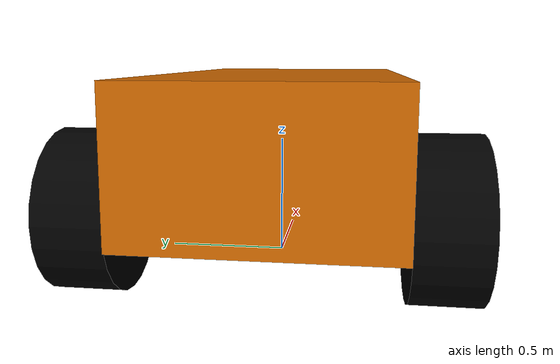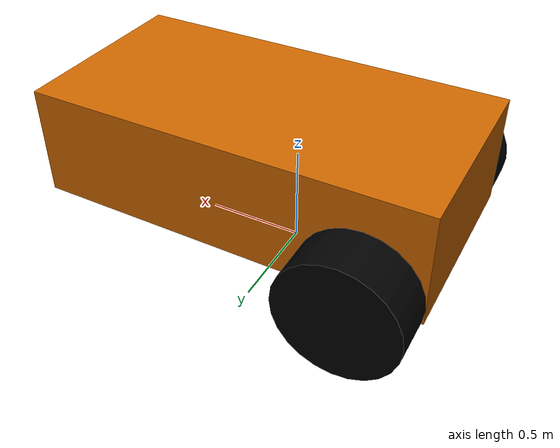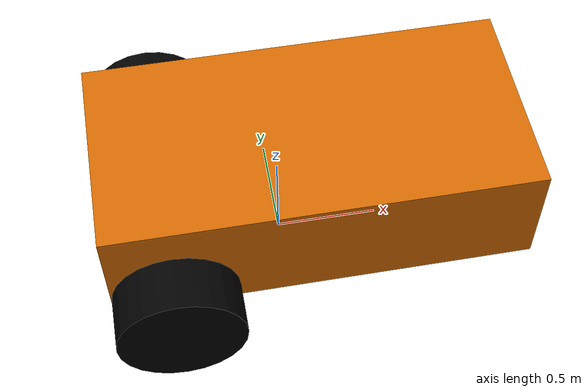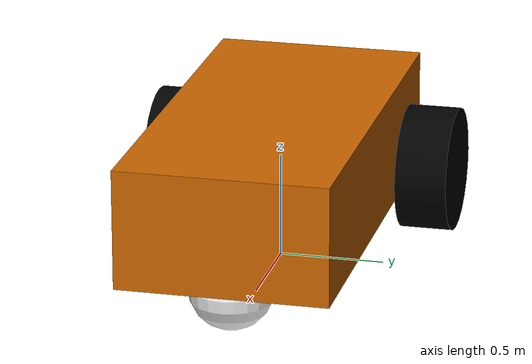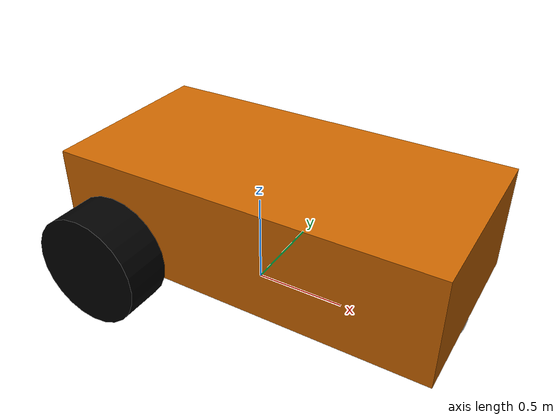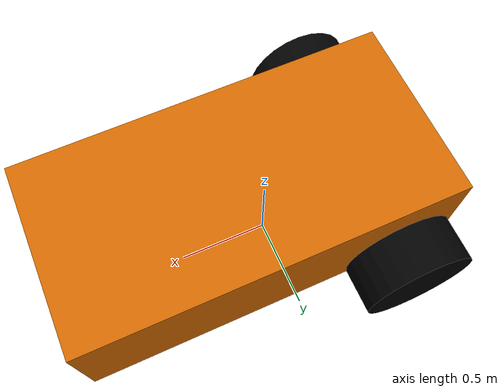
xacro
<?xml version="1.0"?>
<robot name="uwtec_cart" xmlns:xacro="http://www.ros.org/wiki/xacro">

  <xacro:arg name="namespace" default="" />

  <material name="orange">
    <color rgba="0.8 0.4 0.0 1.0"/>
  </material>

  <material name="black">
    <color rgba="0 0 0 1.0"/>
  </material>

  <material name="white">
    <color rgba="1 1 1 1.0"/>
  </material>

  <!-- Base Footprint -->
  <link name="base_footprint"/>
  <joint name="base_footprint_to_base_link" type="fixed">
    <origin xyz="0 0 0" rpy="0 0 0"/>
    <parent link="base_footprint"/>
    <child link="base_link"/>
  </joint>

  <!-- Base Link -->
  <link name="base_link">
    <visual>
      <origin xyz="0.151427 -0 0.5" rpy="0 0 0"/>
      <geometry>
        <box size="2.01142 1 0.568726"/>
      </geometry>
      <material name="orange"/>
    </visual>

    <collision>
      <origin xyz="0.151427 -0 0.5" rpy="0 0 0"/>
      <geometry>
        <box size="2.01142 1 0.568726"/>
      </geometry>
    </collision>

    <inertial>
      <origin xyz="0.151427 -0 0.5" rpy="0 0 0"/>
      <mass value="1.14395"/>
      <inertia
        ixx="0.126164"
        ixy="0.0"
        ixz="0.0"
        iyy="0.416519"
        iyz="0.0"
        izz="0.481014"/>
    </inertial>
  </link>

  <!-- left wheel Link -->
  <joint name="left_wheel_joint" type="continuous">
    <origin xyz="-0.554283 0.625029 0.3" rpy="-1.5707 0 0"/>
    <parent link="base_link"/>
    <child link="left_wheel"/>
    <axis xyz="0 0 1"/>
    <dynamics damping="0.2"/>
  </joint>

  <link name="left_wheel">
    <visual>
      <geometry>
        <cylinder radius="0.3" length="0.25"/>
      </geometry>
      <material name="black"/>
    </visual>

    <collision>
      <geometry>
        <cylinder radius="0.3" length="0.25"/>
      </geometry>
    </collision>

    <inertial>
      <mass value="2"/>
      <inertia ixx="0.145833"
               ixy="0.0"
               ixz="0.0"
               iyy="0.145833"
               iyz="0.0"
               izz="0.125"/>
    </inertial>
  </link>

  <!-- right wheel Link -->
  <joint name="right_wheel_joint" type="continuous">
    <origin xyz="-0.554283 -0.625029 0.3" rpy="-1.5707 0 0"/>
    <parent link="base_link"/>
    <child link="right_wheel"/>
    <axis xyz="0 0 1"/>
    <dynamics damping="0.2"/>
  </joint>

  <link name="right_wheel">
    <visual>
      <geometry>
        <cylinder radius="0.3" length="0.25"/>
      </geometry>
      <material name="black"/>
    </visual>

    <collision>
      <geometry>
        <cylinder radius="0.3" length="0.25"/>
      </geometry>
    </collision>

    <inertial>
      <mass value="2"/>
      <inertia ixx="0.145833"
               ixy="0.0"
               ixz="0.0"
               iyy="0.145833"
               iyz="0.0"
               izz="0.125"/>
      </inertial>
  </link>

  <!-- caster frontal wheel Link -->
  <joint name="caster_joint" type="fixed">
    <origin xyz="0.957138 -0 0.2" rpy="0 0 0"/>
    <parent link="base_link"/>
    <child link="caster"/>
  </joint>

  <link name="caster">
    <visual>
      <geometry>
        <sphere radius="0.2"/>
      </geometry>
      <material name="white"/>
    </visual>

    <collision>
      <geometry>
        <sphere radius="0.2"/>
      </geometry>
    </collision>

    <inertial>
      <origin xyz="0.957138 -0 0.2" rpy="0 0 0"/>
      <mass value="0.005"/>
      <inertia
        ixx="0.1"
        ixy="0.0"
        ixz="0.0"
        iyy="0.1"
        iyz="0.0"
        izz="0.1"/>
    </inertial>
  </link>

  <joint name="imu_joint" type="fixed">
    <parent link="base_link"/>
    <child link="imu_link"/>
    <origin xyz="0.0 0 0.068" rpy="0 0 0"/>
  </joint>

  <link name="imu_link"/>

  <!-- Add the gps link so we get a static transform for the GPS -->
  <joint name="gps_joint" type="fixed">
    <parent link="base_link"/>
    <child link="gps_link"/>
    <origin xyz="0 0 0" rpy="0 0 0"/>
  </joint>

  <link name="gps_link"/>
</robot>
